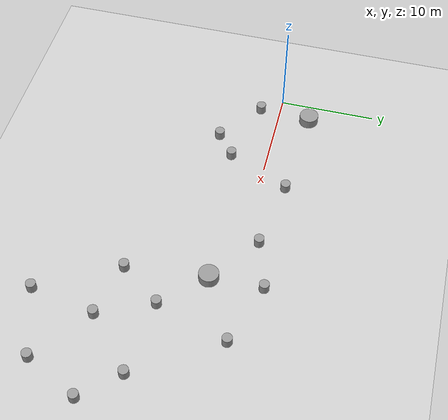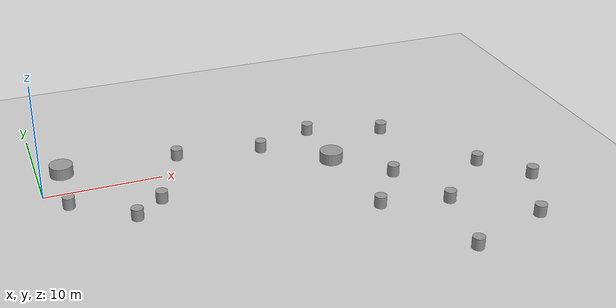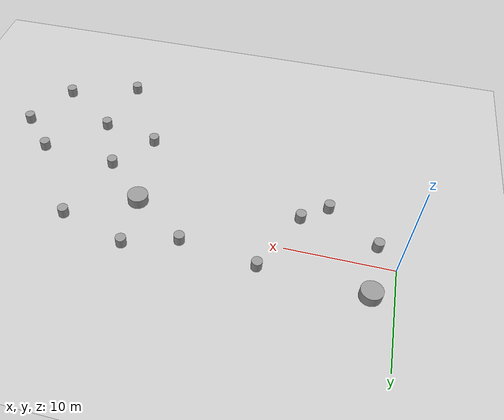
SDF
<sdf version="1.7">
 <world name="default">
  <model name="ground_plane">
   <static>1</static>
   <link name="link">
    <collision name="collision">
     <geometry><plane><normal>0 0 1</normal><size>100 100</size></plane></geometry>
     <surface><friction><ode><mu>100</mu><mu2>50</mu2></ode></friction></surface>
    </collision>
    <visual name="visual">
     <cast_shadows>0</cast_shadows>
     <geometry><plane><normal>0 0 1</normal><size>100 100</size></plane></geometry>
     <material>
      <script><uri>file://media/materials/scripts/gazebo.material</uri><name>Gazebo/Grey</name></script>
     </material>
    </visual>
   </link>
  </model>
  <model name="unit_cylinder_1">
   <pose>1.77775 -2.12656 0.499994 -3e-06 -1e-06 -0</pose>
   <link name="link">
    <inertial>
     <mass>1</mass>
     <inertia><ixx>0.145833</ixx><ixy>0</ixy><ixz>0</ixz><iyy>0.145833</iyy><iyz>0</iyz><izz>0.125</izz></inertia>
    </inertial>
    <collision name="collision">
     <geometry><cylinder><radius>0.5</radius><length>1</length></cylinder></geometry>
    </collision>
    <visual name="visual">
     <geometry><cylinder><radius>0.5</radius><length>1</length></cylinder></geometry>
     <material>
      <script><name>Gazebo/Grey</name><uri>file://media/materials/scripts/gazebo.material</uri></script>
     </material>
    </visual>
   </link>
  </model>
  <model name="unit_cylinder_1_clone">
   <pose>28.533 -6.25429 0.499997 3e-06 -3e-06 0</pose>
   <link name="link">
    <inertial>
     <mass>1</mass>
     <inertia><ixx>0.145833</ixx><ixy>0</ixy><ixz>0</ixz><iyy>0.145833</iyy><iyz>0</iyz><izz>0.125</izz></inertia>
    </inertial>
    <collision name="collision">
     <geometry><cylinder><radius>0.5</radius><length>1</length></cylinder></geometry>
    </collision>
    <visual name="visual">
     <geometry><cylinder><radius>0.5</radius><length>1</length></cylinder></geometry>
     <material>
      <script><name>Gazebo/Grey</name><uri>file://media/materials/scripts/gazebo.material</uri></script>
     </material>
    </visual>
   </link>
  </model>
  <model name="unit_cylinder_1_clone_2">
   <pose>9.02271 -3.75744 0.499996 -3e-06 -1e-06 3.07026</pose>
   <link name="link">
    <inertial>
     <mass>1</mass>
     <inertia><ixx>0.145833</ixx><ixy>0</ixy><ixz>0</ixz><iyy>0.145833</iyy><iyz>0</iyz><izz>0.125</izz></inertia>
    </inertial>
    <collision name="collision">
     <geometry><cylinder><radius>0.5</radius><length>1</length></cylinder></geometry>
    </collision>
    <visual name="visual">
     <geometry><cylinder><radius>0.5</radius><length>1</length></cylinder></geometry>
     <material>
      <script><name>Gazebo/Grey</name><uri>file://media/materials/scripts/gazebo.material</uri></script>
     </material>
    </visual>
   </link>
  </model>
  <model name="unit_cylinder_1m">
   <link name="link">
    <inertial>
     <mass>1</mass>
     <inertia><ixx>0.145833</ixx><ixy>0</ixy><ixz>0</ixz><iyy>0.145833</iyy><iyz>0</iyz><izz>0.125</izz></inertia>
    </inertial>
    <visual name="visual">
     <geometry><cylinder><radius>1</radius><length>1</length></cylinder></geometry>
     <material>
      <script><name>Gazebo/Grey</name><uri>file://media/materials/scripts/gazebo.material</uri></script>
      <shader type="pixel"><normal_map>__default__</normal_map></shader>
      <ambient>0.3 0.3 0.3 1</ambient>
      <diffuse>0.7 0.7 0.7 1</diffuse>
      <specular>0.01 0.01 0.01 1</specular>
      <emissive>0 0 0 1</emissive>
     </material>
    </visual>
    <collision name="collision">
     <geometry><cylinder><radius>1</radius><length>1</length></cylinder></geometry>
     <surface>
      <friction>
       <ode><mu>1</mu><mu2>1</mu2><fdir1>0 0 0</fdir1><slip1>0</slip1><slip2>0</slip2></ode>
       <torsional>
        <coefficient>1</coefficient>
        <patch_radius>0</patch_radius>
        <surface_radius>0</surface_radius>
        <use_patch_radius>1</use_patch_radius>
        <ode><slip>0</slip></ode>
       </torsional>
      </friction>
      <bounce><restitution_coefficient>0</restitution_coefficient><threshold>1e+06</threshold></bounce>
      <contact>
       <collide_without_contact>0</collide_without_contact>
       <collide_without_contact_bitmask>1</collide_without_contact_bitmask>
       <collide_bitmask>1</collide_bitmask>
       <ode>
        <soft_cfm>0</soft_cfm>
        <soft_erp>0.2</soft_erp>
        <kp>1e+13</kp>
        <kd>1</kd>
        <max_vel>0.01</max_vel>
        <min_depth>0</min_depth>
       </ode>
       <bullet>
        <split_impulse>1</split_impulse>
        <split_impulse_penetration_threshold>-0.01</split_impulse_penetration_threshold>
        <soft_cfm>0</soft_cfm>
        <soft_erp>0.2</soft_erp>
        <kp>1e+13</kp>
        <kd>1</kd>
       </bullet>
      </contact>
     </surface>
    </collision>
   </link>
   <static>0</static>
   <pose>2.0705 3.26299 0.499994 6e-06 -6e-06 0.000148</pose>
  </model>
  <model name="unit_cylinder_1m_clone">
   <link name="link">
    <inertial>
     <mass>1</mass>
     <inertia><ixx>0.145833</ixx><ixy>0</ixy><ixz>0</ixz><iyy>0.145833</iyy><iyz>0</iyz><izz>0.125</izz></inertia>
    </inertial>
    <visual name="visual">
     <geometry><cylinder><radius>1</radius><length>1</length></cylinder></geometry>
     <material>
      <script><name>Gazebo/Grey</name><uri>file://media/materials/scripts/gazebo.material</uri></script>
      <shader type="pixel"><normal_map>__default__</normal_map></shader>
      <ambient>0.3 0.3 0.3 1</ambient>
      <diffuse>0.7 0.7 0.7 1</diffuse>
      <specular>0.01 0.01 0.01 1</specular>
      <emissive>0 0 0 1</emissive>
     </material>
    </visual>
    <collision name="collision">
     <geometry><cylinder><radius>1</radius><length>1</length></cylinder></geometry>
     <surface>
      <friction>
       <ode><mu>1</mu><mu2>1</mu2><fdir1>0 0 0</fdir1><slip1>0</slip1><slip2>0</slip2></ode>
       <torsional>
        <coefficient>1</coefficient>
        <patch_radius>0</patch_radius>
        <surface_radius>0</surface_radius>
        <use_patch_radius>1</use_patch_radius>
        <ode><slip>0</slip></ode>
       </torsional>
      </friction>
      <bounce><restitution_coefficient>0</restitution_coefficient><threshold>1e+06</threshold></bounce>
      <contact>
       <collide_without_contact>0</collide_without_contact>
       <collide_without_contact_bitmask>1</collide_without_contact_bitmask>
       <collide_bitmask>1</collide_bitmask>
       <ode>
        <soft_cfm>0</soft_cfm>
        <soft_erp>0.2</soft_erp>
        <kp>1e+13</kp>
        <kd>1</kd>
        <max_vel>0.01</max_vel>
        <min_depth>0</min_depth>
       </ode>
       <bullet>
        <split_impulse>1</split_impulse>
        <split_impulse_penetration_threshold>-0.01</split_impulse_penetration_threshold>
        <soft_cfm>0</soft_cfm>
        <soft_erp>0.2</soft_erp>
        <kp>1e+13</kp>
        <kd>1</kd>
       </bullet>
      </contact>
     </surface>
    </collision>
   </link>
   <static>0</static>
   <pose>24.5271 -2.2224 0.499994 7e-06 -6e-06 -0.015759</pose>
  </model>
  <model name="unit_cylinder">
   <pose>19.3782 1.56987 0.499994 -3e-06 -2e-06 0</pose>
   <link name="link">
    <inertial>
     <mass>1</mass>
     <inertia><ixx>0.145833</ixx><ixy>0</ixy><ixz>0</ixz><iyy>0.145833</iyy><iyz>0</iyz><izz>0.125</izz></inertia>
    </inertial>
    <collision name="collision">
     <geometry><cylinder><radius>0.5</radius><length>1</length></cylinder></geometry>
    </collision>
    <visual name="visual">
     <geometry><cylinder><radius>0.5</radius><length>1</length></cylinder></geometry>
     <material>
      <script><name>Gazebo/Grey</name><uri>file://media/materials/scripts/gazebo.material</uri></script>
     </material>
    </visual>
   </link>
  </model>
  <model name="unit_cylinder_2">
   <pose>6.5711 -5.63443 0.499992 -3e-06 2e-06 0.001305</pose>
   <link name="link">
    <inertial>
     <mass>1</mass>
     <inertia><ixx>0.145833</ixx><ixy>0</ixy><ixz>0</ixz><iyy>0.145833</iyy><iyz>0</iyz><izz>0.125</izz></inertia>
    </inertial>
    <collision name="collision">
     <geometry><cylinder><radius>0.5</radius><length>1</length></cylinder></geometry>
    </collision>
    <visual name="visual">
     <geometry><cylinder><radius>0.5</radius><length>1</length></cylinder></geometry>
     <material>
      <script><name>Gazebo/Grey</name><uri>file://media/materials/scripts/gazebo.material</uri></script>
     </material>
    </visual>
   </link>
  </model>
  <model name="unit_cylinder_7">
   <pose>12.0166 2.69602 0.499998 3e-06 -2e-06 0.012227</pose>
   <link name="link">
    <inertial>
     <mass>1</mass>
     <inertia><ixx>0.145833</ixx><ixy>0</ixy><ixz>0</ixz><iyy>0.145833</iyy><iyz>0</iyz><izz>0.125</izz></inertia>
    </inertial>
    <collision name="collision">
     <geometry><cylinder><radius>0.5</radius><length>1</length></cylinder></geometry>
    </collision>
    <visual name="visual">
     <geometry><cylinder><radius>0.5</radius><length>1</length></cylinder></geometry>
     <material>
      <script><name>Gazebo/Grey</name><uri>file://media/materials/scripts/gazebo.material</uri></script>
     </material>
    </visual>
   </link>
  </model>
  <model name="unit_cylinder_8">
   <pose>24.425 3.19258 0.499991 0 -0 0</pose>
   <link name="link">
    <inertial>
     <mass>1</mass>
     <inertia><ixx>0.145833</ixx><ixy>0</ixy><ixz>0</ixz><iyy>0.145833</iyy><iyz>0</iyz><izz>0.125</izz></inertia>
    </inertial>
    <collision name="collision">
     <geometry><cylinder><radius>0.5</radius><length>1</length></cylinder></geometry>
    </collision>
    <visual name="visual">
     <geometry><cylinder><radius>0.5</radius><length>1</length></cylinder></geometry>
     <material>
      <script><name>Gazebo/Grey</name><uri>file://media/materials/scripts/gazebo.material</uri></script>
     </material>
    </visual>
   </link>
  </model>
  <model name="unit_cylinder_14">
   <pose>30.8517 1.15383 0.499992 -3e-06 2e-06 0</pose>
   <link name="link">
    <inertial>
     <mass>1</mass>
     <inertia><ixx>0.145833</ixx><ixy>0</ixy><ixz>0</ixz><iyy>0.145833</iyy><iyz>0</iyz><izz>0.125</izz></inertia>
    </inertial>
    <collision name="collision">
     <geometry><cylinder><radius>0.5</radius><length>1</length></cylinder></geometry>
    </collision>
    <visual name="visual">
     <geometry><cylinder><radius>0.5</radius><length>1</length></cylinder></geometry>
     <material>
      <script><name>Gazebo/Grey</name><uri>file://media/materials/scripts/gazebo.material</uri></script>
     </material>
    </visual>
   </link>
  </model>
  <model name="unit_cylinder_0">
   <pose>36.1847 -6.99789 0.499998 3e-06 -4e-06 0</pose>
   <link name="link">
    <inertial>
     <mass>1</mass>
     <inertia><ixx>0.145833</ixx><ixy>0</ixy><ixz>0</ixz><iyy>0.145833</iyy><iyz>0</iyz><izz>0.125</izz></inertia>
    </inertial>
    <collision name="collision">
     <geometry><cylinder><radius>0.5</radius><length>1</length></cylinder></geometry>
    </collision>
    <visual name="visual">
     <geometry><cylinder><radius>0.5</radius><length>1</length></cylinder></geometry>
     <material>
      <script><name>Gazebo/Grey</name><uri>file://media/materials/scripts/gazebo.material</uri></script>
     </material>
    </visual>
   </link>
  </model>
  <model name="unit_cylinder_3">
   <pose>30.9925 -11.6594 0.499992 -3e-06 -4e-06 -0</pose>
   <link name="link">
    <inertial>
     <mass>1</mass>
     <inertia><ixx>0.145833</ixx><ixy>0</ixy><ixz>0</ixz><iyy>0.145833</iyy><iyz>0</iyz><izz>0.125</izz></inertia>
    </inertial>
    <collision name="collision">
     <geometry><cylinder><radius>0.5</radius><length>1</length></cylinder></geometry>
    </collision>
    <visual name="visual">
     <geometry><cylinder><radius>0.5</radius><length>1</length></cylinder></geometry>
     <material>
      <script><name>Gazebo/Grey</name><uri>file://media/materials/scripts/gazebo.material</uri></script>
     </material>
    </visual>
   </link>
  </model>
  <model name="unit_cylinder_4">
   <pose>25.3596 -10.4432 0.499993 -3e-06 -3e-06 0</pose>
   <link name="link">
    <inertial>
     <mass>1</mass>
     <inertia><ixx>0.145833</ixx><ixy>0</ixy><ixz>0</ixz><iyy>0.145833</iyy><iyz>0</iyz><izz>0.125</izz></inertia>
    </inertial>
    <collision name="collision">
     <geometry><cylinder><radius>0.5</radius><length>1</length></cylinder></geometry>
    </collision>
    <visual name="visual">
     <geometry><cylinder><radius>0.5</radius><length>1</length></cylinder></geometry>
     <material>
      <script><name>Gazebo/Grey</name><uri>file://media/materials/scripts/gazebo.material</uri></script>
     </material>
    </visual>
   </link>
  </model>
  <model name="unit_cylinder_5">
   <pose>39.4309 -10.5414 0.499997 3e-06 4e-06 -0</pose>
   <link name="link">
    <inertial>
     <mass>1</mass>
     <inertia><ixx>0.145833</ixx><ixy>0</ixy><ixz>0</ixz><iyy>0.145833</iyy><iyz>0</iyz><izz>0.125</izz></inertia>
    </inertial>
    <collision name="collision">
     <geometry><cylinder><radius>0.5</radius><length>1</length></cylinder></geometry>
    </collision>
    <visual name="visual">
     <geometry><cylinder><radius>0.5</radius><length>1</length></cylinder></geometry>
     <material>
      <script><name>Gazebo/Grey</name><uri>file://media/materials/scripts/gazebo.material</uri></script>
     </material>
    </visual>
   </link>
  </model>
  <model name="unit_cylinder_6">
   <pose>29.7265 -18.2931 0.499993 -3e-06 -4e-06 -0</pose>
   <link name="link">
    <inertial>
     <mass>1</mass>
     <inertia><ixx>0.145833</ixx><ixy>0</ixy><ixz>0</ixz><iyy>0.145833</iyy><iyz>0</iyz><izz>0.125</izz></inertia>
    </inertial>
    <collision name="collision">
     <geometry><cylinder><radius>0.5</radius><length>1</length></cylinder></geometry>
    </collision>
    <visual name="visual">
     <geometry><cylinder><radius>0.5</radius><length>1</length></cylinder></geometry>
     <material>
      <script><name>Gazebo/Grey</name><uri>file://media/materials/scripts/gazebo.material</uri></script>
     </material>
    </visual>
   </link>
  </model>
  <model name="unit_cylinder_9">
   <pose>36.705 -15.9372 0.499997 3e-06 4e-06 -0</pose>
   <link name="link">
    <inertial>
     <mass>1</mass>
     <inertia><ixx>0.145833</ixx><ixy>0</ixy><ixz>0</ixz><iyy>0.145833</iyy><iyz>0</iyz><izz>0.125</izz></inertia>
    </inertial>
    <collision name="collision">
     <geometry><cylinder><radius>0.5</radius><length>1</length></cylinder></geometry>
    </collision>
    <visual name="visual">
     <geometry><cylinder><radius>0.5</radius><length>1</length></cylinder></geometry>
     <material>
      <script><name>Gazebo/Grey</name><uri>file://media/materials/scripts/gazebo.material</uri></script>
     </material>
    </visual>
   </link>
  </model>
 </world>
</sdf>
